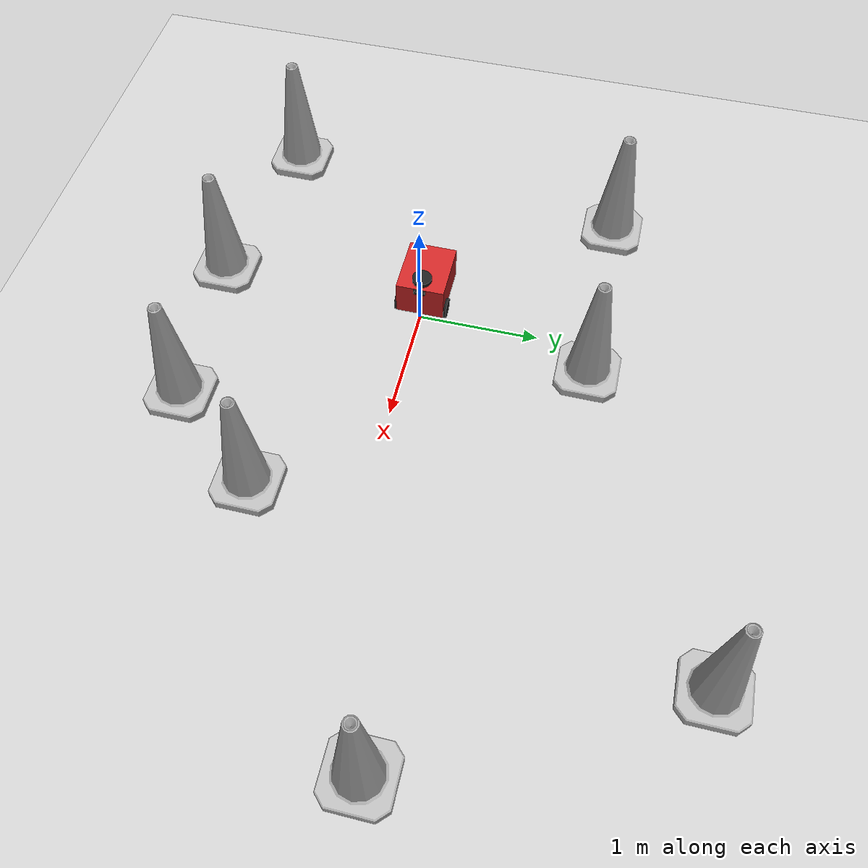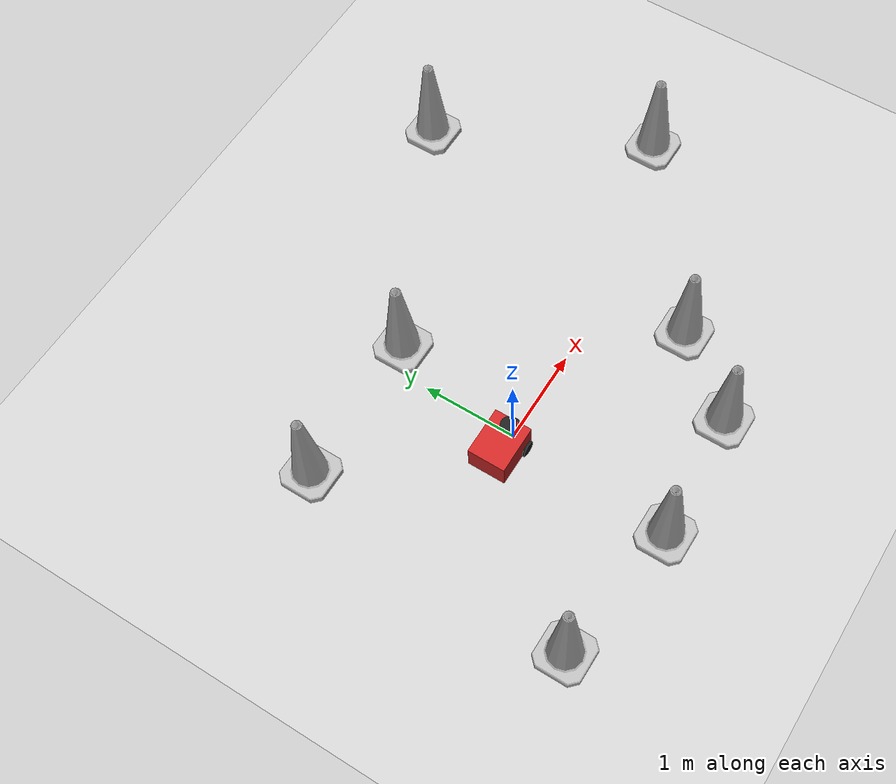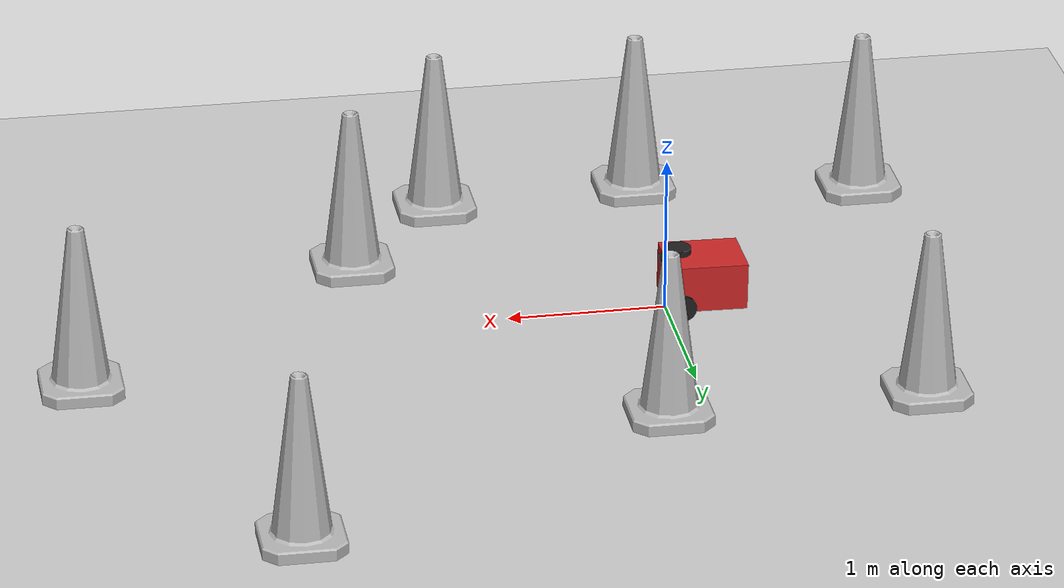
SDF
<sdf version="1.7">
 <world name="default">
  <light name="sun" type="directional">
   <pose>0 0 10 0 -0 0</pose>
   <diffuse>0.8 0.8 0.8 1</diffuse>
   <specular>0.2 0.2 0.2 1</specular>
   <attenuation>
    <range>1000</range>
    <constant>0.9</constant>
    <linear>0.01</linear>
    <quadratic>0.001</quadratic>
   </attenuation>
   <direction>-0.5 0.1 -0.9</direction>
   <spot><inner_angle>0</inner_angle><outer_angle>0</outer_angle><falloff>0</falloff></spot>
  </light>
  <model name="ground_plane">
   <static>1</static>
   <link name="link">
    <collision name="collision">
     <geometry><plane><normal>0 0 1</normal><size>100 100</size></plane></geometry>
     <surface>
      <contact><collide_bitmask>65535</collide_bitmask></contact>
      <friction><ode><mu>100</mu><mu2>50</mu2></ode></friction>
     </surface>
    </collision>
    <visual name="visual">
     <cast_shadows>0</cast_shadows>
     <geometry><plane><normal>0 0 1</normal><size>100 100</size></plane></geometry>
     <material>
      <script><uri>file://media/materials/scripts/gazebo.material</uri><name>Gazebo/Grey</name></script>
     </material>
    </visual>
   </link>
  </model>
  <gravity>0 0 -9.8</gravity>
  <magnetic_field>6e-06 2.3e-05 -4.2e-05</magnetic_field>
  <atmosphere type="adiabatic"/>
  <physics type="ode">
   <max_step_size>0.001</max_step_size>
   <real_time_factor>1</real_time_factor>
   <real_time_update_rate>1000</real_time_update_rate>
  </physics>
  <scene><ambient>0.4 0.4 0.4 1</ambient><background>0.7 0.7 0.7 1</background><shadows>1</shadows></scene>
  <audio><device>default</device></audio>
  <spherical_coordinates>
   <surface_model>EARTH_WGS84</surface_model>
   <latitude_deg>0</latitude_deg>
   <longitude_deg>0</longitude_deg>
   <elevation>0</elevation>
   <heading_deg>0</heading_deg>
  </spherical_coordinates>
  <model name="my_bot">
   <link name="base_link">
    <inertial>
     <pose>-0.094507 0 0.199113 0 -0 0</pose>
     <mass>7.1</mass>
     <inertia>
      <ixx>0.155579</ixx>
      <ixy>0</ixy>
      <ixz>-0.0570376</ixz>
      <iyy>0.234175</iyy>
      <iyz>0</iyz>
      <izz>0.194962</izz>
     </inertia>
    </inertial>
    <collision name="base_link_fixed_joint_lump__caster_wheel_collision">
     <pose>-0.31 0 -0.055 0 -0 0</pose>
     <geometry><cylinder><length>0.05</length><radius>0.04</radius></cylinder></geometry>
     <surface><friction><ode><mu>0.001</mu><mu2>0.001</mu2></ode></friction></surface>
    </collision>
    <collision name="base_link_fixed_joint_lump__laser_frame_collision_1">
     <pose>0 0 0.31 0 -0 3.14159</pose>
     <geometry><cylinder><length>0.04</length><radius>0.08</radius></cylinder></geometry>
    </collision>
    <visual name="base_link_fixed_joint_lump__caster_wheel_visual">
     <pose>-0.31 0 -0.055 0 -0 0</pose>
     <geometry><cylinder><length>0.07</length><radius>0.04</radius></cylinder></geometry>
     <material>
      <script><name>Gazebo/Black</name><uri>file://media/materials/scripts/gazebo.material</uri></script>
     </material>
    </visual>
    <visual name="base_link_fixed_joint_lump__chassis_visual_1">
     <pose>-0.16 0 0.1223 0 -0 0</pose>
     <geometry><box><size>0.5 0.4 0.3</size></box></geometry>
     <material>
      <script><name>Gazebo/Red</name><uri>file://media/materials/scripts/gazebo.material</uri></script>
     </material>
    </visual>
    <visual name="base_link_fixed_joint_lump__camera_link_visual_2">
     <pose>0.1 0 0.2523 0 -0 0</pose>
     <geometry><box><size>0.03 0.1 0.03</size></box></geometry>
     <material>
      <script><name>Gazebo/Black</name><uri>file://media/materials/scripts/gazebo.material</uri></script>
     </material>
    </visual>
    <visual name="base_link_fixed_joint_lump__laser_frame_visual_3">
     <pose>0 0 0.31 0 -0 3.14159</pose>
     <geometry><cylinder><length>0.04</length><radius>0.08</radius></cylinder></geometry>
     <material>
      <script><name>Gazebo/Black</name><uri>file://media/materials/scripts/gazebo.material</uri></script>
     </material>
    </visual>
    <sensor name="camera" type="camera">
     <visualize>1</visualize>
     <update_rate>30</update_rate>
     <camera>
      <horizontal_fov>1.361</horizontal_fov>
      <image><format>R8G8B8</format><width>1920</width><height>1080</height></image>
      <clip><near>0.05</near><far>8</far></clip>
     </camera>
     <plugin name="camera_controller" filename="libgazebo_ros_camera.so">
      <frame_name>camera_link_optical</frame_name>
     </plugin>
     <pose>0.1 0 0.2523 0 -0 0</pose>
    </sensor>
    <sensor name="laser" type="ray">
     <visualize>1</visualize>
     <update_rate>10</update_rate>
     <ray>
      <scan>
       <horizontal>
        <samples>360</samples>
        <min_angle>-3.14</min_angle>
        <max_angle>3.14</max_angle>
        <resolution>1</resolution>
       </horizontal>
       <vertical><samples>1</samples><min_angle>0</min_angle><max_angle>0</max_angle></vertical>
      </scan>
      <range><min>0.15</min><max>15</max></range>
     </ray>
     <plugin name="laser_controller" filename="libgazebo_ros_ray_sensor.so">
      <ros><argument>~/out:=scan</argument></ros>
      <output_type>sensor_msgs/LaserScan</output_type>
      <frame_name>laser_frame</frame_name>
     </plugin>
     <pose>0 0 0.31 0 -0 3.14159</pose>
    </sensor>
   </link>
   <joint name="left_wheel_joint" type="revolute">
    <pose relative_to="base_link">0 0.2 0 -1.5708 0 0</pose>
    <parent>base_link</parent>
    <child>left_wheel</child>
    <axis>
     <xyz>0 0 1</xyz>
     <limit><lower>-1e+16</lower><upper>1e+16</upper></limit>
     <dynamics><spring_reference>0</spring_reference><spring_stiffness>0</spring_stiffness></dynamics>
    </axis>
   </joint>
   <link name="left_wheel">
    <pose relative_to="left_wheel_joint">0 0 0 0 -0 0</pose>
    <inertial>
     <mass>3</mass>
     <inertia>
      <ixx>0.00581875</ixx>
      <ixy>0</ixy>
      <ixz>0</ixz>
      <iyy>0.00581875</iyy>
      <iyz>0</iyz>
      <izz>0.0108375</izz>
     </inertia>
    </inertial>
    <collision name="left_wheel_collision">
     <geometry><sphere><radius>0.085</radius></sphere></geometry>
    </collision>
    <visual name="left_wheel_visual">
     <geometry><cylinder><length>0.04</length><radius>0.085</radius></cylinder></geometry>
     <material>
      <script><name>Gazebo/Black</name><uri>file://media/materials/scripts/gazebo.material</uri></script>
     </material>
    </visual>
   </link>
   <joint name="right_wheel_joint" type="revolute">
    <pose relative_to="base_link">0 -0.2 0 1.5708 -0 0</pose>
    <parent>base_link</parent>
    <child>right_wheel</child>
    <axis>
     <xyz>0 0 -1</xyz>
     <limit><lower>-1e+16</lower><upper>1e+16</upper></limit>
     <dynamics><spring_reference>0</spring_reference><spring_stiffness>0</spring_stiffness></dynamics>
    </axis>
   </joint>
   <link name="right_wheel">
    <pose relative_to="right_wheel_joint">0 0 0 0 -0 0</pose>
    <inertial>
     <mass>3</mass>
     <inertia>
      <ixx>0.00581875</ixx>
      <ixy>0</ixy>
      <ixz>0</ixz>
      <iyy>0.00581875</iyy>
      <iyz>0</iyz>
      <izz>0.0108375</izz>
     </inertia>
    </inertial>
    <collision name="right_wheel_collision">
     <geometry><sphere><radius>0.085</radius></sphere></geometry>
    </collision>
    <visual name="right_wheel_visual">
     <geometry><cylinder><length>0.04</length><radius>0.085</radius></cylinder></geometry>
     <material>
      <script><name>Gazebo/Black</name><uri>file://media/materials/scripts/gazebo.material</uri></script>
     </material>
    </visual>
   </link>
   <static>0</static>
   <plugin name="gazebo_ros2_control" filename="libgazebo_ros2_control.so">
    <parameters>/home/ws/install/pg1_project/share/pg1_project/config/my_controllers_sim.yaml</parameters>
   </plugin>
   <pose>-0.07542 0.001361 0.084999 -8e-06 -0.014306 0.001271</pose>
  </model>
  <model name="Construction Cone">
   <link name="link">
    <collision name="collision">
     <geometry>
      <mesh><scale>10 10 10</scale><uri>model://construction_cone/meshes/construction_cone.dae</uri></mesh>
     </geometry>
    </collision>
    <visual name="visual">
     <geometry>
      <mesh><scale>10 10 10</scale><uri>model://construction_cone/meshes/construction_cone.dae</uri></mesh>
     </geometry>
    </visual>
    <inertial>
     <inertia><ixx>1</ixx><ixy>0</ixy><ixz>0</ixz><iyy>1</iyy><iyz>0</iyz><izz>1</izz></inertia>
     <mass>1</mass>
    </inertial>
   </link>
   <pose>-1.5907 -1.52856 -5e-06 -4e-06 1e-06 0</pose>
  </model>
  <model name="Construction Cone_0">
   <link name="link">
    <collision name="collision">
     <geometry>
      <mesh><scale>10 10 10</scale><uri>model://construction_cone/meshes/construction_cone.dae</uri></mesh>
     </geometry>
    </collision>
    <visual name="visual">
     <geometry>
      <mesh><scale>10 10 10</scale><uri>model://construction_cone/meshes/construction_cone.dae</uri></mesh>
     </geometry>
    </visual>
    <inertial>
     <inertia><ixx>1</ixx><ixy>0</ixy><ixz>0</ixz><iyy>1</iyy><iyz>0</iyz><izz>1</izz></inertia>
     <mass>1</mass>
    </inertial>
   </link>
   <pose>-0.126362 -1.74991 -3e-06 -3e-06 -1e-06 -0</pose>
  </model>
  <model name="Construction Cone_1">
   <link name="link">
    <collision name="collision">
     <geometry>
      <mesh><scale>10 10 10</scale><uri>model://construction_cone/meshes/construction_cone.dae</uri></mesh>
     </geometry>
    </collision>
    <visual name="visual">
     <geometry>
      <mesh><scale>10 10 10</scale><uri>model://construction_cone/meshes/construction_cone.dae</uri></mesh>
     </geometry>
    </visual>
    <inertial>
     <inertia><ixx>1</ixx><ixy>0</ixy><ixz>0</ixz><iyy>1</iyy><iyz>0</iyz><izz>1</izz></inertia>
     <mass>1</mass>
    </inertial>
   </link>
   <pose>1.20832 -1.66372 -0 0 -0 0</pose>
  </model>
  <model name="Construction Cone_2">
   <link name="link">
    <collision name="collision">
     <geometry>
      <mesh><scale>10 10 10</scale><uri>model://construction_cone/meshes/construction_cone.dae</uri></mesh>
     </geometry>
    </collision>
    <visual name="visual">
     <geometry>
      <mesh><scale>10 10 10</scale><uri>model://construction_cone/meshes/construction_cone.dae</uri></mesh>
     </geometry>
    </visual>
    <inertial>
     <inertia><ixx>1</ixx><ixy>0</ixy><ixz>0</ixz><iyy>1</iyy><iyz>0</iyz><izz>1</izz></inertia>
     <mass>1</mass>
    </inertial>
   </link>
   <pose>-1.34524 1.4384 -0 0 -0 0</pose>
  </model>
  <model name="Construction Cone_3">
   <link name="link">
    <collision name="collision">
     <geometry>
      <mesh><scale>10 10 10</scale><uri>model://construction_cone/meshes/construction_cone.dae</uri></mesh>
     </geometry>
    </collision>
    <visual name="visual">
     <geometry>
      <mesh><scale>10 10 10</scale><uri>model://construction_cone/meshes/construction_cone.dae</uri></mesh>
     </geometry>
    </visual>
    <inertial>
     <inertia><ixx>1</ixx><ixy>0</ixy><ixz>0</ixz><iyy>1</iyy><iyz>0</iyz><izz>1</izz></inertia>
     <mass>1</mass>
    </inertial>
   </link>
   <pose>0.259301 1.45551 -6e-06 -4e-06 0 0</pose>
  </model>
  <model name="Construction Cone_4">
   <link name="link">
    <collision name="collision">
     <geometry>
      <mesh><scale>10 10 10</scale><uri>model://construction_cone/meshes/construction_cone.dae</uri></mesh>
     </geometry>
    </collision>
    <visual name="visual">
     <geometry>
      <mesh><scale>10 10 10</scale><uri>model://construction_cone/meshes/construction_cone.dae</uri></mesh>
     </geometry>
    </visual>
    <inertial>
     <inertia><ixx>1</ixx><ixy>0</ixy><ixz>0</ixz><iyy>1</iyy><iyz>0</iyz><izz>1</izz></inertia>
     <mass>1</mass>
    </inertial>
   </link>
   <pose>1.86366 -0.874397 -0 0 -1e-06 0</pose>
  </model>
  <model name="Construction Cone_5">
   <link name="link">
    <collision name="collision">
     <geometry>
      <mesh><scale>10 10 10</scale><uri>model://construction_cone/meshes/construction_cone.dae</uri></mesh>
     </geometry>
    </collision>
    <visual name="visual">
     <geometry>
      <mesh><scale>10 10 10</scale><uri>model://construction_cone/meshes/construction_cone.dae</uri></mesh>
     </geometry>
    </visual>
    <inertial>
     <inertia><ixx>1</ixx><ixy>0</ixy><ixz>0</ixz><iyy>1</iyy><iyz>0</iyz><izz>1</izz></inertia>
     <mass>1</mass>
    </inertial>
   </link>
   <pose>3.73063 0.5193 -8e-06 -6e-06 -0 -0</pose>
  </model>
  <model name="Construction Cone_6">
   <link name="link">
    <collision name="collision">
     <geometry>
      <mesh><scale>10 10 10</scale><uri>model://construction_cone/meshes/construction_cone.dae</uri></mesh>
     </geometry>
    </collision>
    <visual name="visual">
     <geometry>
      <mesh><scale>10 10 10</scale><uri>model://construction_cone/meshes/construction_cone.dae</uri></mesh>
     </geometry>
    </visual>
    <inertial>
     <inertia><ixx>1</ixx><ixy>0</ixy><ixz>0</ixz><iyy>1</iyy><iyz>0</iyz><izz>1</izz></inertia>
     <mass>1</mass>
    </inertial>
   </link>
   <pose>2.65704 2.66282 -0 0 -0 0</pose>
  </model>
 </world>
</sdf>
